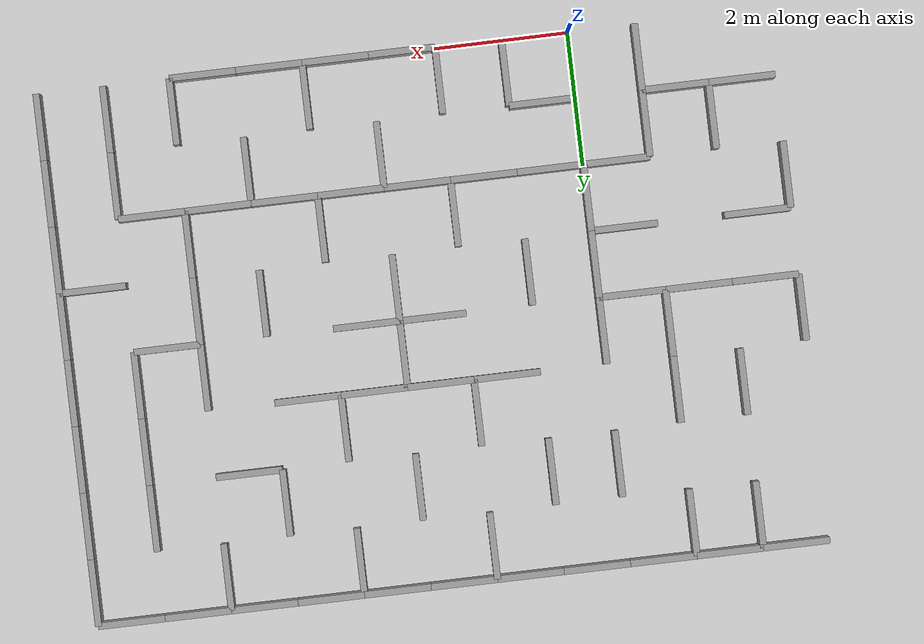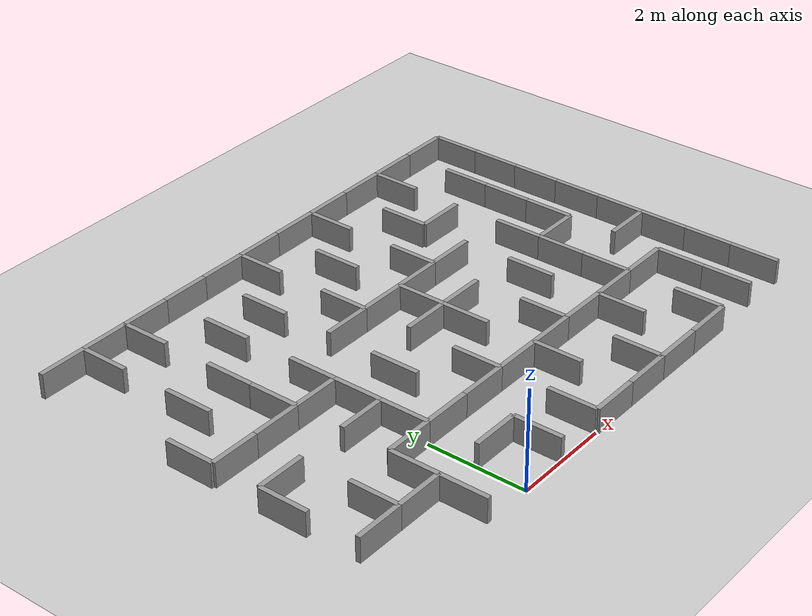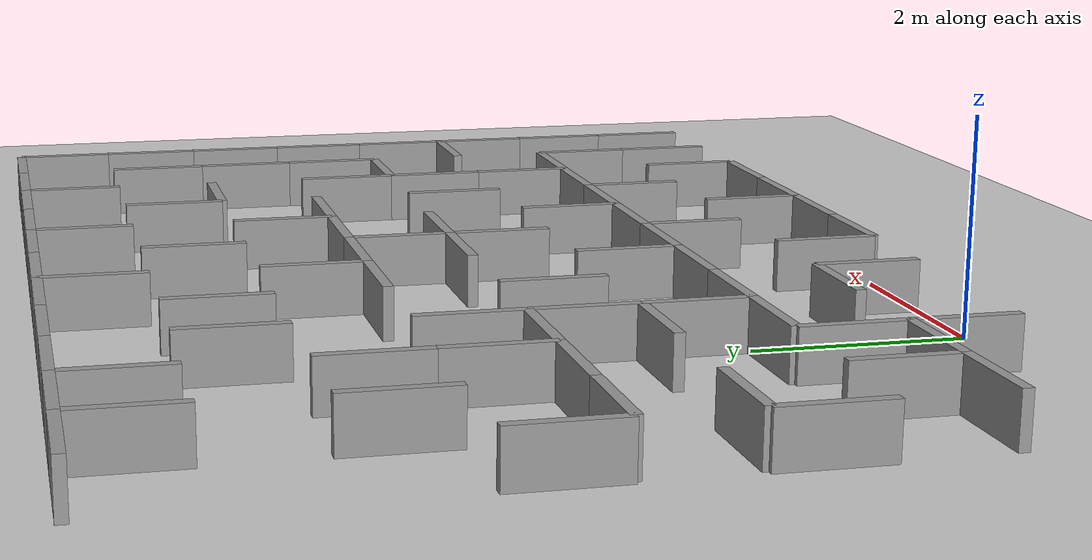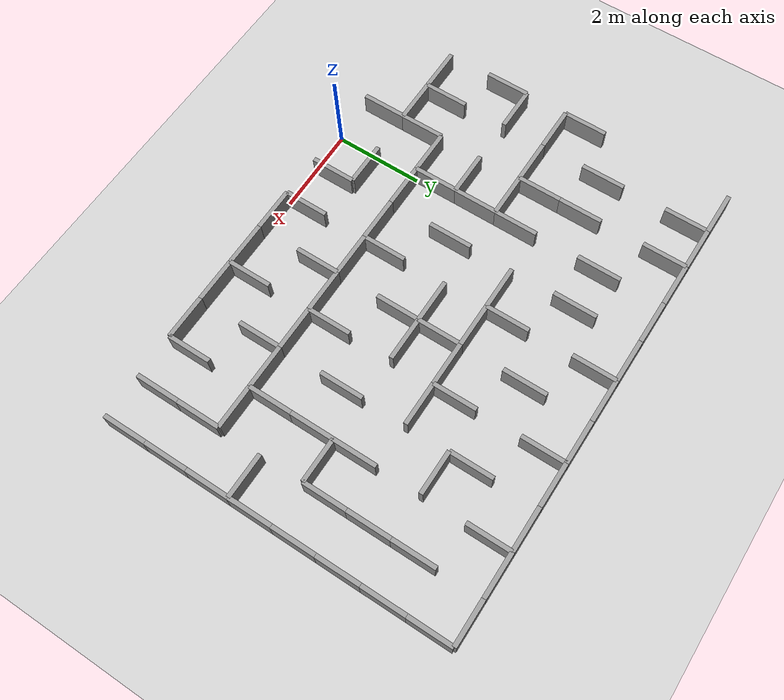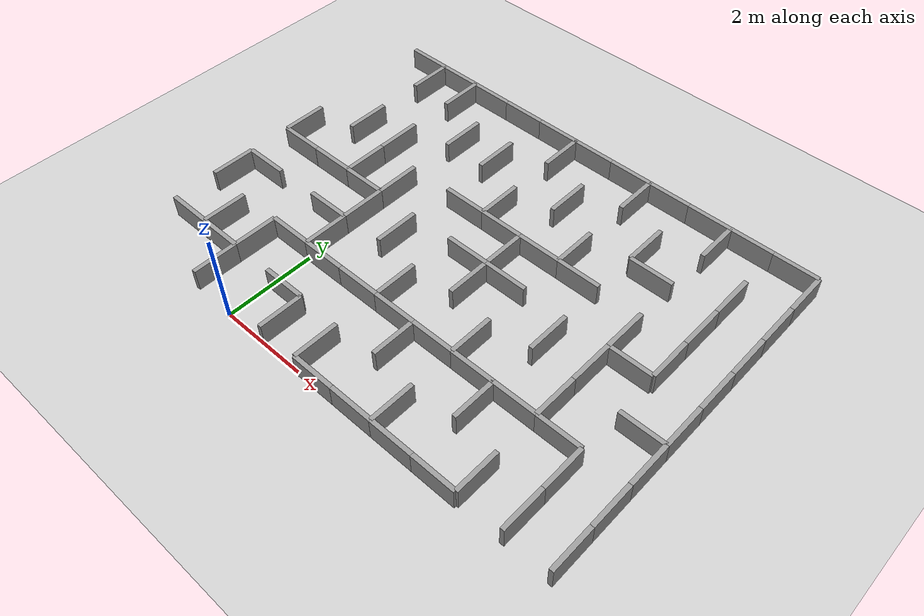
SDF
<sdf version="1.7">
 <world name="maze_world">
  <include><uri>model://sun</uri></include>
  <include><uri>model://ground_plane</uri></include>
  <model name="wall_5">
   <static>true</static>
   <pose>-2.5 8.0 0.25 0 0 0</pose>
   <link name="link">
    <collision name="collision"><geometry><box><size>1.0 0.1 0.5</size></box></geometry></collision>
    <visual name="visual">
     <geometry><box><size>1.0 0.1 0.5</size></box></geometry>
     <material>
      <script><uri>file://media/materials/scripts/gazebo.material</uri><name>Gazebo/Grey</name></script>
     </material>
    </visual>
   </link>
  </model>
  <model name="wall_6">
   <static>true</static>
   <pose>-1.5 8.0 0.25 0 0 0</pose>
   <link name="link">
    <collision name="collision"><geometry><box><size>1.0 0.1 0.5</size></box></geometry></collision>
    <visual name="visual">
     <geometry><box><size>1.0 0.1 0.5</size></box></geometry>
     <material>
      <script><uri>file://media/materials/scripts/gazebo.material</uri><name>Gazebo/Grey</name></script>
     </material>
    </visual>
   </link>
  </model>
  <model name="wall_7">
   <static>true</static>
   <pose>-0.5 8.0 0.25 0 0 0</pose>
   <link name="link">
    <collision name="collision"><geometry><box><size>1.0 0.1 0.5</size></box></geometry></collision>
    <visual name="visual">
     <geometry><box><size>1.0 0.1 0.5</size></box></geometry>
     <material>
      <script><uri>file://media/materials/scripts/gazebo.material</uri><name>Gazebo/Grey</name></script>
     </material>
    </visual>
   </link>
  </model>
  <model name="wall_8">
   <static>true</static>
   <pose>0.5 8.0 0.25 0 0 0</pose>
   <link name="link">
    <collision name="collision"><geometry><box><size>1.0 0.1 0.5</size></box></geometry></collision>
    <visual name="visual">
     <geometry><box><size>1.0 0.1 0.5</size></box></geometry>
     <material>
      <script><uri>file://media/materials/scripts/gazebo.material</uri><name>Gazebo/Grey</name></script>
     </material>
    </visual>
   </link>
  </model>
  <model name="wall_9">
   <static>true</static>
   <pose>1.5 8.0 0.25 0 0 0</pose>
   <link name="link">
    <collision name="collision"><geometry><box><size>1.0 0.1 0.5</size></box></geometry></collision>
    <visual name="visual">
     <geometry><box><size>1.0 0.1 0.5</size></box></geometry>
     <material>
      <script><uri>file://media/materials/scripts/gazebo.material</uri><name>Gazebo/Grey</name></script>
     </material>
    </visual>
   </link>
  </model>
  <model name="wall_10">
   <static>true</static>
   <pose>2.5 8.0 0.25 0 0 0</pose>
   <link name="link">
    <collision name="collision"><geometry><box><size>1.0 0.1 0.5</size></box></geometry></collision>
    <visual name="visual">
     <geometry><box><size>1.0 0.1 0.5</size></box></geometry>
     <material>
      <script><uri>file://media/materials/scripts/gazebo.material</uri><name>Gazebo/Grey</name></script>
     </material>
    </visual>
   </link>
  </model>
  <model name="wall_11">
   <static>true</static>
   <pose>3.5 8.0 0.25 0 0 0</pose>
   <link name="link">
    <collision name="collision"><geometry><box><size>1.0 0.1 0.5</size></box></geometry></collision>
    <visual name="visual">
     <geometry><box><size>1.0 0.1 0.5</size></box></geometry>
     <material>
      <script><uri>file://media/materials/scripts/gazebo.material</uri><name>Gazebo/Grey</name></script>
     </material>
    </visual>
   </link>
  </model>
  <model name="wall_12">
   <static>true</static>
   <pose>4.5 8.0 0.25 0 0 0</pose>
   <link name="link">
    <collision name="collision"><geometry><box><size>1.0 0.1 0.5</size></box></geometry></collision>
    <visual name="visual">
     <geometry><box><size>1.0 0.1 0.5</size></box></geometry>
     <material>
      <script><uri>file://media/materials/scripts/gazebo.material</uri><name>Gazebo/Grey</name></script>
     </material>
    </visual>
   </link>
  </model>
  <model name="wall_13">
   <static>true</static>
   <pose>5.5 8.0 0.25 0 0 0</pose>
   <link name="link">
    <collision name="collision"><geometry><box><size>1.0 0.1 0.5</size></box></geometry></collision>
    <visual name="visual">
     <geometry><box><size>1.0 0.1 0.5</size></box></geometry>
     <material>
      <script><uri>file://media/materials/scripts/gazebo.material</uri><name>Gazebo/Grey</name></script>
     </material>
    </visual>
   </link>
  </model>
  <model name="wall_14">
   <static>true</static>
   <pose>6.5 8.0 0.25 0 0 0</pose>
   <link name="link">
    <collision name="collision"><geometry><box><size>1.0 0.1 0.5</size></box></geometry></collision>
    <visual name="visual">
     <geometry><box><size>1.0 0.1 0.5</size></box></geometry>
     <material>
      <script><uri>file://media/materials/scripts/gazebo.material</uri><name>Gazebo/Grey</name></script>
     </material>
    </visual>
   </link>
  </model>
  <model name="wall_15">
   <static>true</static>
   <pose>7.5 8.0 0.25 0 0 0</pose>
   <link name="link">
    <collision name="collision"><geometry><box><size>1.0 0.1 0.5</size></box></geometry></collision>
    <visual name="visual">
     <geometry><box><size>1.0 0.1 0.5</size></box></geometry>
     <material>
      <script><uri>file://media/materials/scripts/gazebo.material</uri><name>Gazebo/Grey</name></script>
     </material>
    </visual>
   </link>
  </model>
  <model name="wall_22">
   <static>true</static>
   <pose>-2.0 7.5 0.25 0 0 1.5707963267948966</pose>
   <link name="link">
    <collision name="collision"><geometry><box><size>1.0 0.1 0.5</size></box></geometry></collision>
    <visual name="visual">
     <geometry><box><size>1.0 0.1 0.5</size></box></geometry>
     <material>
      <script><uri>file://media/materials/scripts/gazebo.material</uri><name>Gazebo/Grey</name></script>
     </material>
    </visual>
   </link>
  </model>
  <model name="wall_23">
   <static>true</static>
   <pose>-1.0 7.5 0.25 0 0 1.5707963267948966</pose>
   <link name="link">
    <collision name="collision"><geometry><box><size>1.0 0.1 0.5</size></box></geometry></collision>
    <visual name="visual">
     <geometry><box><size>1.0 0.1 0.5</size></box></geometry>
     <material>
      <script><uri>file://media/materials/scripts/gazebo.material</uri><name>Gazebo/Grey</name></script>
     </material>
    </visual>
   </link>
  </model>
  <model name="wall_24">
   <static>true</static>
   <pose>2.0 7.5 0.25 0 0 1.5707963267948966</pose>
   <link name="link">
    <collision name="collision"><geometry><box><size>1.0 0.1 0.5</size></box></geometry></collision>
    <visual name="visual">
     <geometry><box><size>1.0 0.1 0.5</size></box></geometry>
     <material>
      <script><uri>file://media/materials/scripts/gazebo.material</uri><name>Gazebo/Grey</name></script>
     </material>
    </visual>
   </link>
  </model>
  <model name="wall_25">
   <static>true</static>
   <pose>4.0 7.5 0.25 0 0 1.5707963267948966</pose>
   <link name="link">
    <collision name="collision"><geometry><box><size>1.0 0.1 0.5</size></box></geometry></collision>
    <visual name="visual">
     <geometry><box><size>1.0 0.1 0.5</size></box></geometry>
     <material>
      <script><uri>file://media/materials/scripts/gazebo.material</uri><name>Gazebo/Grey</name></script>
     </material>
    </visual>
   </link>
  </model>
  <model name="wall_26">
   <static>true</static>
   <pose>6.0 7.5 0.25 0 0 1.5707963267948966</pose>
   <link name="link">
    <collision name="collision"><geometry><box><size>1.0 0.1 0.5</size></box></geometry></collision>
    <visual name="visual">
     <geometry><box><size>1.0 0.1 0.5</size></box></geometry>
     <material>
      <script><uri>file://media/materials/scripts/gazebo.material</uri><name>Gazebo/Grey</name></script>
     </material>
    </visual>
   </link>
  </model>
  <model name="wall_27">
   <static>true</static>
   <pose>8.0 7.5 0.25 0 0 1.5707963267948966</pose>
   <link name="link">
    <collision name="collision"><geometry><box><size>1.0 0.1 0.5</size></box></geometry></collision>
    <visual name="visual">
     <geometry><box><size>1.0 0.1 0.5</size></box></geometry>
     <material>
      <script><uri>file://media/materials/scripts/gazebo.material</uri><name>Gazebo/Grey</name></script>
     </material>
    </visual>
   </link>
  </model>
  <model name="wall_29">
   <static>true</static>
   <pose>0.0 6.5 0.25 0 0 1.5707963267948966</pose>
   <link name="link">
    <collision name="collision"><geometry><box><size>1.0 0.1 0.5</size></box></geometry></collision>
    <visual name="visual">
     <geometry><box><size>1.0 0.1 0.5</size></box></geometry>
     <material>
      <script><uri>file://media/materials/scripts/gazebo.material</uri><name>Gazebo/Grey</name></script>
     </material>
    </visual>
   </link>
  </model>
  <model name="wall_30">
   <static>true</static>
   <pose>1.0 6.5 0.25 0 0 1.5707963267948966</pose>
   <link name="link">
    <collision name="collision"><geometry><box><size>1.0 0.1 0.5</size></box></geometry></collision>
    <visual name="visual">
     <geometry><box><size>1.0 0.1 0.5</size></box></geometry>
     <material>
      <script><uri>file://media/materials/scripts/gazebo.material</uri><name>Gazebo/Grey</name></script>
     </material>
    </visual>
   </link>
  </model>
  <model name="wall_31">
   <static>true</static>
   <pose>3.0 6.5 0.25 0 0 1.5707963267948966</pose>
   <link name="link">
    <collision name="collision"><geometry><box><size>1.0 0.1 0.5</size></box></geometry></collision>
    <visual name="visual">
     <geometry><box><size>1.0 0.1 0.5</size></box></geometry>
     <material>
      <script><uri>file://media/materials/scripts/gazebo.material</uri><name>Gazebo/Grey</name></script>
     </material>
    </visual>
   </link>
  </model>
  <model name="wall_32">
   <static>true</static>
   <pose>5.0 6.5 0.25 0 0 1.5707963267948966</pose>
   <link name="link">
    <collision name="collision"><geometry><box><size>1.0 0.1 0.5</size></box></geometry></collision>
    <visual name="visual">
     <geometry><box><size>1.0 0.1 0.5</size></box></geometry>
     <material>
      <script><uri>file://media/materials/scripts/gazebo.material</uri><name>Gazebo/Grey</name></script>
     </material>
    </visual>
   </link>
  </model>
  <model name="wall_33">
   <static>true</static>
   <pose>7.0 6.5 0.25 0 0 1.5707963267948966</pose>
   <link name="link">
    <collision name="collision"><geometry><box><size>1.0 0.1 0.5</size></box></geometry></collision>
    <visual name="visual">
     <geometry><box><size>1.0 0.1 0.5</size></box></geometry>
     <material>
      <script><uri>file://media/materials/scripts/gazebo.material</uri><name>Gazebo/Grey</name></script>
     </material>
    </visual>
   </link>
  </model>
  <model name="wall_34">
   <static>true</static>
   <pose>8.0 6.5 0.25 0 0 1.5707963267948966</pose>
   <link name="link">
    <collision name="collision"><geometry><box><size>1.0 0.1 0.5</size></box></geometry></collision>
    <visual name="visual">
     <geometry><box><size>1.0 0.1 0.5</size></box></geometry>
     <material>
      <script><uri>file://media/materials/scripts/gazebo.material</uri><name>Gazebo/Grey</name></script>
     </material>
    </visual>
   </link>
  </model>
  <model name="wall_35">
   <static>true</static>
   <pose>5.5 6.0 0.25 0 0 0</pose>
   <link name="link">
    <collision name="collision"><geometry><box><size>1.0 0.1 0.5</size></box></geometry></collision>
    <visual name="visual">
     <geometry><box><size>1.0 0.1 0.5</size></box></geometry>
     <material>
      <script><uri>file://media/materials/scripts/gazebo.material</uri><name>Gazebo/Grey</name></script>
     </material>
    </visual>
   </link>
  </model>
  <model name="wall_42">
   <static>true</static>
   <pose>-2.0 5.5 0.25 0 0 1.5707963267948966</pose>
   <link name="link">
    <collision name="collision"><geometry><box><size>1.0 0.1 0.5</size></box></geometry></collision>
    <visual name="visual">
     <geometry><box><size>1.0 0.1 0.5</size></box></geometry>
     <material>
      <script><uri>file://media/materials/scripts/gazebo.material</uri><name>Gazebo/Grey</name></script>
     </material>
    </visual>
   </link>
  </model>
  <model name="wall_43">
   <static>true</static>
   <pose>-1.0 5.5 0.25 0 0 1.5707963267948966</pose>
   <link name="link">
    <collision name="collision"><geometry><box><size>1.0 0.1 0.5</size></box></geometry></collision>
    <visual name="visual">
     <geometry><box><size>1.0 0.1 0.5</size></box></geometry>
     <material>
      <script><uri>file://media/materials/scripts/gazebo.material</uri><name>Gazebo/Grey</name></script>
     </material>
    </visual>
   </link>
  </model>
  <model name="wall_44">
   <static>true</static>
   <pose>2.0 5.5 0.25 0 0 1.5707963267948966</pose>
   <link name="link">
    <collision name="collision"><geometry><box><size>1.0 0.1 0.5</size></box></geometry></collision>
    <visual name="visual">
     <geometry><box><size>1.0 0.1 0.5</size></box></geometry>
     <material>
      <script><uri>file://media/materials/scripts/gazebo.material</uri><name>Gazebo/Grey</name></script>
     </material>
    </visual>
   </link>
  </model>
  <model name="wall_45">
   <static>true</static>
   <pose>4.0 5.5 0.25 0 0 1.5707963267948966</pose>
   <link name="link">
    <collision name="collision"><geometry><box><size>1.0 0.1 0.5</size></box></geometry></collision>
    <visual name="visual">
     <geometry><box><size>1.0 0.1 0.5</size></box></geometry>
     <material>
      <script><uri>file://media/materials/scripts/gazebo.material</uri><name>Gazebo/Grey</name></script>
     </material>
    </visual>
   </link>
  </model>
  <model name="wall_46">
   <static>true</static>
   <pose>7.0 5.5 0.25 0 0 1.5707963267948966</pose>
   <link name="link">
    <collision name="collision"><geometry><box><size>1.0 0.1 0.5</size></box></geometry></collision>
    <visual name="visual">
     <geometry><box><size>1.0 0.1 0.5</size></box></geometry>
     <material>
      <script><uri>file://media/materials/scripts/gazebo.material</uri><name>Gazebo/Grey</name></script>
     </material>
    </visual>
   </link>
  </model>
  <model name="wall_47">
   <static>true</static>
   <pose>8.0 5.5 0.25 0 0 1.5707963267948966</pose>
   <link name="link">
    <collision name="collision"><geometry><box><size>1.0 0.1 0.5</size></box></geometry></collision>
    <visual name="visual">
     <geometry><box><size>1.0 0.1 0.5</size></box></geometry>
     <material>
      <script><uri>file://media/materials/scripts/gazebo.material</uri><name>Gazebo/Grey</name></script>
     </material>
    </visual>
   </link>
  </model>
  <model name="wall_50">
   <static>true</static>
   <pose>1.5 5.0 0.25 0 0 0</pose>
   <link name="link">
    <collision name="collision"><geometry><box><size>1.0 0.1 0.5</size></box></geometry></collision>
    <visual name="visual">
     <geometry><box><size>1.0 0.1 0.5</size></box></geometry>
     <material>
      <script><uri>file://media/materials/scripts/gazebo.material</uri><name>Gazebo/Grey</name></script>
     </material>
    </visual>
   </link>
  </model>
  <model name="wall_51">
   <static>true</static>
   <pose>2.5 5.0 0.25 0 0 0</pose>
   <link name="link">
    <collision name="collision"><geometry><box><size>1.0 0.1 0.5</size></box></geometry></collision>
    <visual name="visual">
     <geometry><box><size>1.0 0.1 0.5</size></box></geometry>
     <material>
      <script><uri>file://media/materials/scripts/gazebo.material</uri><name>Gazebo/Grey</name></script>
     </material>
    </visual>
   </link>
  </model>
  <model name="wall_52">
   <static>true</static>
   <pose>3.5 5.0 0.25 0 0 0</pose>
   <link name="link">
    <collision name="collision"><geometry><box><size>1.0 0.1 0.5</size></box></geometry></collision>
    <visual name="visual">
     <geometry><box><size>1.0 0.1 0.5</size></box></geometry>
     <material>
      <script><uri>file://media/materials/scripts/gazebo.material</uri><name>Gazebo/Grey</name></script>
     </material>
    </visual>
   </link>
  </model>
  <model name="wall_53">
   <static>true</static>
   <pose>4.5 5.0 0.25 0 0 0</pose>
   <link name="link">
    <collision name="collision"><geometry><box><size>1.0 0.1 0.5</size></box></geometry></collision>
    <visual name="visual">
     <geometry><box><size>1.0 0.1 0.5</size></box></geometry>
     <material>
      <script><uri>file://media/materials/scripts/gazebo.material</uri><name>Gazebo/Grey</name></script>
     </material>
    </visual>
   </link>
  </model>
  <model name="wall_57">
   <static>true</static>
   <pose>-3.0 4.5 0.25 0 0 1.5707963267948966</pose>
   <link name="link">
    <collision name="collision"><geometry><box><size>1.0 0.1 0.5</size></box></geometry></collision>
    <visual name="visual">
     <geometry><box><size>1.0 0.1 0.5</size></box></geometry>
     <material>
      <script><uri>file://media/materials/scripts/gazebo.material</uri><name>Gazebo/Grey</name></script>
     </material>
    </visual>
   </link>
  </model>
  <model name="wall_58">
   <static>true</static>
   <pose>-1.0 4.5 0.25 0 0 1.5707963267948966</pose>
   <link name="link">
    <collision name="collision"><geometry><box><size>1.0 0.1 0.5</size></box></geometry></collision>
    <visual name="visual">
     <geometry><box><size>1.0 0.1 0.5</size></box></geometry>
     <material>
      <script><uri>file://media/materials/scripts/gazebo.material</uri><name>Gazebo/Grey</name></script>
     </material>
    </visual>
   </link>
  </model>
  <model name="wall_59">
   <static>true</static>
   <pose>0.0 4.5 0.25 0 0 1.5707963267948966</pose>
   <link name="link">
    <collision name="collision"><geometry><box><size>1.0 0.1 0.5</size></box></geometry></collision>
    <visual name="visual">
     <geometry><box><size>1.0 0.1 0.5</size></box></geometry>
     <material>
      <script><uri>file://media/materials/scripts/gazebo.material</uri><name>Gazebo/Grey</name></script>
     </material>
    </visual>
   </link>
  </model>
  <model name="wall_60">
   <static>true</static>
   <pose>3.0 4.5 0.25 0 0 1.5707963267948966</pose>
   <link name="link">
    <collision name="collision"><geometry><box><size>1.0 0.1 0.5</size></box></geometry></collision>
    <visual name="visual">
     <geometry><box><size>1.0 0.1 0.5</size></box></geometry>
     <material>
      <script><uri>file://media/materials/scripts/gazebo.material</uri><name>Gazebo/Grey</name></script>
     </material>
    </visual>
   </link>
  </model>
  <model name="wall_61">
   <static>true</static>
   <pose>6.0 4.5 0.25 0 0 1.5707963267948966</pose>
   <link name="link">
    <collision name="collision"><geometry><box><size>1.0 0.1 0.5</size></box></geometry></collision>
    <visual name="visual">
     <geometry><box><size>1.0 0.1 0.5</size></box></geometry>
     <material>
      <script><uri>file://media/materials/scripts/gazebo.material</uri><name>Gazebo/Grey</name></script>
     </material>
    </visual>
   </link>
  </model>
  <model name="wall_62">
   <static>true</static>
   <pose>7.0 4.5 0.25 0 0 1.5707963267948966</pose>
   <link name="link">
    <collision name="collision"><geometry><box><size>1.0 0.1 0.5</size></box></geometry></collision>
    <visual name="visual">
     <geometry><box><size>1.0 0.1 0.5</size></box></geometry>
     <material>
      <script><uri>file://media/materials/scripts/gazebo.material</uri><name>Gazebo/Grey</name></script>
     </material>
    </visual>
   </link>
  </model>
  <model name="wall_63">
   <static>true</static>
   <pose>8.0 4.5 0.25 0 0 1.5707963267948966</pose>
   <link name="link">
    <collision name="collision"><geometry><box><size>1.0 0.1 0.5</size></box></geometry></collision>
    <visual name="visual">
     <geometry><box><size>1.0 0.1 0.5</size></box></geometry>
     <material>
      <script><uri>file://media/materials/scripts/gazebo.material</uri><name>Gazebo/Grey</name></script>
     </material>
    </visual>
   </link>
  </model>
  <model name="wall_66">
   <static>true</static>
   <pose>-2.5 4.0 0.25 0 0 0</pose>
   <link name="link">
    <collision name="collision"><geometry><box><size>1.0 0.1 0.5</size></box></geometry></collision>
    <visual name="visual">
     <geometry><box><size>1.0 0.1 0.5</size></box></geometry>
     <material>
      <script><uri>file://media/materials/scripts/gazebo.material</uri><name>Gazebo/Grey</name></script>
     </material>
    </visual>
   </link>
  </model>
  <model name="wall_67">
   <static>true</static>
   <pose>-1.5 4.0 0.25 0 0 0</pose>
   <link name="link">
    <collision name="collision"><geometry><box><size>1.0 0.1 0.5</size></box></geometry></collision>
    <visual name="visual">
     <geometry><box><size>1.0 0.1 0.5</size></box></geometry>
     <material>
      <script><uri>file://media/materials/scripts/gazebo.material</uri><name>Gazebo/Grey</name></script>
     </material>
    </visual>
   </link>
  </model>
  <model name="wall_68">
   <static>true</static>
   <pose>-0.5 4.0 0.25 0 0 0</pose>
   <link name="link">
    <collision name="collision"><geometry><box><size>1.0 0.1 0.5</size></box></geometry></collision>
    <visual name="visual">
     <geometry><box><size>1.0 0.1 0.5</size></box></geometry>
     <material>
      <script><uri>file://media/materials/scripts/gazebo.material</uri><name>Gazebo/Grey</name></script>
     </material>
    </visual>
   </link>
  </model>
  <model name="wall_69">
   <static>true</static>
   <pose>2.5 4.0 0.25 0 0 0</pose>
   <link name="link">
    <collision name="collision"><geometry><box><size>1.0 0.1 0.5</size></box></geometry></collision>
    <visual name="visual">
     <geometry><box><size>1.0 0.1 0.5</size></box></geometry>
     <material>
      <script><uri>file://media/materials/scripts/gazebo.material</uri><name>Gazebo/Grey</name></script>
     </material>
    </visual>
   </link>
  </model>
  <model name="wall_70">
   <static>true</static>
   <pose>3.5 4.0 0.25 0 0 0</pose>
   <link name="link">
    <collision name="collision"><geometry><box><size>1.0 0.1 0.5</size></box></geometry></collision>
    <visual name="visual">
     <geometry><box><size>1.0 0.1 0.5</size></box></geometry>
     <material>
      <script><uri>file://media/materials/scripts/gazebo.material</uri><name>Gazebo/Grey</name></script>
     </material>
    </visual>
   </link>
  </model>
  <model name="wall_71">
   <static>true</static>
   <pose>6.5 4.0 0.25 0 0 0</pose>
   <link name="link">
    <collision name="collision"><geometry><box><size>1.0 0.1 0.5</size></box></geometry></collision>
    <visual name="visual">
     <geometry><box><size>1.0 0.1 0.5</size></box></geometry>
     <material>
      <script><uri>file://media/materials/scripts/gazebo.material</uri><name>Gazebo/Grey</name></script>
     </material>
    </visual>
   </link>
  </model>
  <model name="wall_76">
   <static>true</static>
   <pose>0.0 3.5 0.25 0 0 1.5707963267948966</pose>
   <link name="link">
    <collision name="collision"><geometry><box><size>1.0 0.1 0.5</size></box></geometry></collision>
    <visual name="visual">
     <geometry><box><size>1.0 0.1 0.5</size></box></geometry>
     <material>
      <script><uri>file://media/materials/scripts/gazebo.material</uri><name>Gazebo/Grey</name></script>
     </material>
    </visual>
   </link>
  </model>
  <model name="wall_77">
   <static>true</static>
   <pose>1.0 3.5 0.25 0 0 1.5707963267948966</pose>
   <link name="link">
    <collision name="collision"><geometry><box><size>1.0 0.1 0.5</size></box></geometry></collision>
    <visual name="visual">
     <geometry><box><size>1.0 0.1 0.5</size></box></geometry>
     <material>
      <script><uri>file://media/materials/scripts/gazebo.material</uri><name>Gazebo/Grey</name></script>
     </material>
    </visual>
   </link>
  </model>
  <model name="wall_78">
   <static>true</static>
   <pose>3.0 3.5 0.25 0 0 1.5707963267948966</pose>
   <link name="link">
    <collision name="collision"><geometry><box><size>1.0 0.1 0.5</size></box></geometry></collision>
    <visual name="visual">
     <geometry><box><size>1.0 0.1 0.5</size></box></geometry>
     <material>
      <script><uri>file://media/materials/scripts/gazebo.material</uri><name>Gazebo/Grey</name></script>
     </material>
    </visual>
   </link>
  </model>
  <model name="wall_79">
   <static>true</static>
   <pose>5.0 3.5 0.25 0 0 1.5707963267948966</pose>
   <link name="link">
    <collision name="collision"><geometry><box><size>1.0 0.1 0.5</size></box></geometry></collision>
    <visual name="visual">
     <geometry><box><size>1.0 0.1 0.5</size></box></geometry>
     <material>
      <script><uri>file://media/materials/scripts/gazebo.material</uri><name>Gazebo/Grey</name></script>
     </material>
    </visual>
   </link>
  </model>
  <model name="wall_80">
   <static>true</static>
   <pose>6.0 3.5 0.25 0 0 1.5707963267948966</pose>
   <link name="link">
    <collision name="collision"><geometry><box><size>1.0 0.1 0.5</size></box></geometry></collision>
    <visual name="visual">
     <geometry><box><size>1.0 0.1 0.5</size></box></geometry>
     <material>
      <script><uri>file://media/materials/scripts/gazebo.material</uri><name>Gazebo/Grey</name></script>
     </material>
    </visual>
   </link>
  </model>
  <model name="wall_81">
   <static>true</static>
   <pose>8.0 3.5 0.25 0 0 1.5707963267948966</pose>
   <link name="link">
    <collision name="collision"><geometry><box><size>1.0 0.1 0.5</size></box></geometry></collision>
    <visual name="visual">
     <geometry><box><size>1.0 0.1 0.5</size></box></geometry>
     <material>
      <script><uri>file://media/materials/scripts/gazebo.material</uri><name>Gazebo/Grey</name></script>
     </material>
    </visual>
   </link>
  </model>
  <model name="wall_83">
   <static>true</static>
   <pose>-2.5 3.0 0.25 0 0 0</pose>
   <link name="link">
    <collision name="collision"><geometry><box><size>1.0 0.1 0.5</size></box></geometry></collision>
    <visual name="visual">
     <geometry><box><size>1.0 0.1 0.5</size></box></geometry>
     <material>
      <script><uri>file://media/materials/scripts/gazebo.material</uri><name>Gazebo/Grey</name></script>
     </material>
    </visual>
   </link>
  </model>
  <model name="wall_84">
   <static>true</static>
   <pose>-0.5 3.0 0.25 0 0 0</pose>
   <link name="link">
    <collision name="collision"><geometry><box><size>1.0 0.1 0.5</size></box></geometry></collision>
    <visual name="visual">
     <geometry><box><size>1.0 0.1 0.5</size></box></geometry>
     <material>
      <script><uri>file://media/materials/scripts/gazebo.material</uri><name>Gazebo/Grey</name></script>
     </material>
    </visual>
   </link>
  </model>
  <model name="wall_85">
   <static>true</static>
   <pose>7.5 3.0 0.25 0 0 0</pose>
   <link name="link">
    <collision name="collision"><geometry><box><size>1.0 0.1 0.5</size></box></geometry></collision>
    <visual name="visual">
     <geometry><box><size>1.0 0.1 0.5</size></box></geometry>
     <material>
      <script><uri>file://media/materials/scripts/gazebo.material</uri><name>Gazebo/Grey</name></script>
     </material>
    </visual>
   </link>
  </model>
  <model name="wall_89">
   <static>true</static>
   <pose>-3.0 2.5 0.25 0 0 1.5707963267948966</pose>
   <link name="link">
    <collision name="collision"><geometry><box><size>1.0 0.1 0.5</size></box></geometry></collision>
    <visual name="visual">
     <geometry><box><size>1.0 0.1 0.5</size></box></geometry>
     <material>
      <script><uri>file://media/materials/scripts/gazebo.material</uri><name>Gazebo/Grey</name></script>
     </material>
    </visual>
   </link>
  </model>
  <model name="wall_90">
   <static>true</static>
   <pose>0.0 2.5 0.25 0 0 1.5707963267948966</pose>
   <link name="link">
    <collision name="collision"><geometry><box><size>1.0 0.1 0.5</size></box></geometry></collision>
    <visual name="visual">
     <geometry><box><size>1.0 0.1 0.5</size></box></geometry>
     <material>
      <script><uri>file://media/materials/scripts/gazebo.material</uri><name>Gazebo/Grey</name></script>
     </material>
    </visual>
   </link>
  </model>
  <model name="wall_91">
   <static>true</static>
   <pose>2.0 2.5 0.25 0 0 1.5707963267948966</pose>
   <link name="link">
    <collision name="collision"><geometry><box><size>1.0 0.1 0.5</size></box></geometry></collision>
    <visual name="visual">
     <geometry><box><size>1.0 0.1 0.5</size></box></geometry>
     <material>
      <script><uri>file://media/materials/scripts/gazebo.material</uri><name>Gazebo/Grey</name></script>
     </material>
    </visual>
   </link>
  </model>
  <model name="wall_92">
   <static>true</static>
   <pose>4.0 2.5 0.25 0 0 1.5707963267948966</pose>
   <link name="link">
    <collision name="collision"><geometry><box><size>1.0 0.1 0.5</size></box></geometry></collision>
    <visual name="visual">
     <geometry><box><size>1.0 0.1 0.5</size></box></geometry>
     <material>
      <script><uri>file://media/materials/scripts/gazebo.material</uri><name>Gazebo/Grey</name></script>
     </material>
    </visual>
   </link>
  </model>
  <model name="wall_93">
   <static>true</static>
   <pose>6.0 2.5 0.25 0 0 1.5707963267948966</pose>
   <link name="link">
    <collision name="collision"><geometry><box><size>1.0 0.1 0.5</size></box></geometry></collision>
    <visual name="visual">
     <geometry><box><size>1.0 0.1 0.5</size></box></geometry>
     <material>
      <script><uri>file://media/materials/scripts/gazebo.material</uri><name>Gazebo/Grey</name></script>
     </material>
    </visual>
   </link>
  </model>
  <model name="wall_94">
   <static>true</static>
   <pose>8.0 2.5 0.25 0 0 1.5707963267948966</pose>
   <link name="link">
    <collision name="collision"><geometry><box><size>1.0 0.1 0.5</size></box></geometry></collision>
    <visual name="visual">
     <geometry><box><size>1.0 0.1 0.5</size></box></geometry>
     <material>
      <script><uri>file://media/materials/scripts/gazebo.material</uri><name>Gazebo/Grey</name></script>
     </material>
    </visual>
   </link>
  </model>
  <model name="wall_96">
   <static>true</static>
   <pose>-0.5 2.0 0.25 0 0 0</pose>
   <link name="link">
    <collision name="collision"><geometry><box><size>1.0 0.1 0.5</size></box></geometry></collision>
    <visual name="visual">
     <geometry><box><size>1.0 0.1 0.5</size></box></geometry>
     <material>
      <script><uri>file://media/materials/scripts/gazebo.material</uri><name>Gazebo/Grey</name></script>
     </material>
    </visual>
   </link>
  </model>
  <model name="wall_97">
   <static>true</static>
   <pose>0.5 2.0 0.25 0 0 0</pose>
   <link name="link">
    <collision name="collision"><geometry><box><size>1.0 0.1 0.5</size></box></geometry></collision>
    <visual name="visual">
     <geometry><box><size>1.0 0.1 0.5</size></box></geometry>
     <material>
      <script><uri>file://media/materials/scripts/gazebo.material</uri><name>Gazebo/Grey</name></script>
     </material>
    </visual>
   </link>
  </model>
  <model name="wall_98">
   <static>true</static>
   <pose>1.5 2.0 0.25 0 0 0</pose>
   <link name="link">
    <collision name="collision"><geometry><box><size>1.0 0.1 0.5</size></box></geometry></collision>
    <visual name="visual">
     <geometry><box><size>1.0 0.1 0.5</size></box></geometry>
     <material>
      <script><uri>file://media/materials/scripts/gazebo.material</uri><name>Gazebo/Grey</name></script>
     </material>
    </visual>
   </link>
  </model>
  <model name="wall_99">
   <static>true</static>
   <pose>2.5 2.0 0.25 0 0 0</pose>
   <link name="link">
    <collision name="collision"><geometry><box><size>1.0 0.1 0.5</size></box></geometry></collision>
    <visual name="visual">
     <geometry><box><size>1.0 0.1 0.5</size></box></geometry>
     <material>
      <script><uri>file://media/materials/scripts/gazebo.material</uri><name>Gazebo/Grey</name></script>
     </material>
    </visual>
   </link>
  </model>
  <model name="wall_100">
   <static>true</static>
   <pose>3.5 2.0 0.25 0 0 0</pose>
   <link name="link">
    <collision name="collision"><geometry><box><size>1.0 0.1 0.5</size></box></geometry></collision>
    <visual name="visual">
     <geometry><box><size>1.0 0.1 0.5</size></box></geometry>
     <material>
      <script><uri>file://media/materials/scripts/gazebo.material</uri><name>Gazebo/Grey</name></script>
     </material>
    </visual>
   </link>
  </model>
  <model name="wall_101">
   <static>true</static>
   <pose>4.5 2.0 0.25 0 0 0</pose>
   <link name="link">
    <collision name="collision"><geometry><box><size>1.0 0.1 0.5</size></box></geometry></collision>
    <visual name="visual">
     <geometry><box><size>1.0 0.1 0.5</size></box></geometry>
     <material>
      <script><uri>file://media/materials/scripts/gazebo.material</uri><name>Gazebo/Grey</name></script>
     </material>
    </visual>
   </link>
  </model>
  <model name="wall_102">
   <static>true</static>
   <pose>5.5 2.0 0.25 0 0 0</pose>
   <link name="link">
    <collision name="collision"><geometry><box><size>1.0 0.1 0.5</size></box></geometry></collision>
    <visual name="visual">
     <geometry><box><size>1.0 0.1 0.5</size></box></geometry>
     <material>
      <script><uri>file://media/materials/scripts/gazebo.material</uri><name>Gazebo/Grey</name></script>
     </material>
    </visual>
   </link>
  </model>
  <model name="wall_103">
   <static>true</static>
   <pose>6.5 2.0 0.25 0 0 0</pose>
   <link name="link">
    <collision name="collision"><geometry><box><size>1.0 0.1 0.5</size></box></geometry></collision>
    <visual name="visual">
     <geometry><box><size>1.0 0.1 0.5</size></box></geometry>
     <material>
      <script><uri>file://media/materials/scripts/gazebo.material</uri><name>Gazebo/Grey</name></script>
     </material>
    </visual>
   </link>
  </model>
  <model name="wall_109">
   <static>true</static>
   <pose>-2.0 1.5 0.25 0 0 1.5707963267948966</pose>
   <link name="link">
    <collision name="collision"><geometry><box><size>1.0 0.1 0.5</size></box></geometry></collision>
    <visual name="visual">
     <geometry><box><size>1.0 0.1 0.5</size></box></geometry>
     <material>
      <script><uri>file://media/materials/scripts/gazebo.material</uri><name>Gazebo/Grey</name></script>
     </material>
    </visual>
   </link>
  </model>
  <model name="wall_110">
   <static>true</static>
   <pose>-1.0 1.5 0.25 0 0 1.5707963267948966</pose>
   <link name="link">
    <collision name="collision"><geometry><box><size>1.0 0.1 0.5</size></box></geometry></collision>
    <visual name="visual">
     <geometry><box><size>1.0 0.1 0.5</size></box></geometry>
     <material>
      <script><uri>file://media/materials/scripts/gazebo.material</uri><name>Gazebo/Grey</name></script>
     </material>
    </visual>
   </link>
  </model>
  <model name="wall_111">
   <static>true</static>
   <pose>3.0 1.5 0.25 0 0 1.5707963267948966</pose>
   <link name="link">
    <collision name="collision"><geometry><box><size>1.0 0.1 0.5</size></box></geometry></collision>
    <visual name="visual">
     <geometry><box><size>1.0 0.1 0.5</size></box></geometry>
     <material>
      <script><uri>file://media/materials/scripts/gazebo.material</uri><name>Gazebo/Grey</name></script>
     </material>
    </visual>
   </link>
  </model>
  <model name="wall_112">
   <static>true</static>
   <pose>5.0 1.5 0.25 0 0 1.5707963267948966</pose>
   <link name="link">
    <collision name="collision"><geometry><box><size>1.0 0.1 0.5</size></box></geometry></collision>
    <visual name="visual">
     <geometry><box><size>1.0 0.1 0.5</size></box></geometry>
     <material>
      <script><uri>file://media/materials/scripts/gazebo.material</uri><name>Gazebo/Grey</name></script>
     </material>
    </visual>
   </link>
  </model>
  <model name="wall_113">
   <static>true</static>
   <pose>7.0 1.5 0.25 0 0 1.5707963267948966</pose>
   <link name="link">
    <collision name="collision"><geometry><box><size>1.0 0.1 0.5</size></box></geometry></collision>
    <visual name="visual">
     <geometry><box><size>1.0 0.1 0.5</size></box></geometry>
     <material>
      <script><uri>file://media/materials/scripts/gazebo.material</uri><name>Gazebo/Grey</name></script>
     </material>
    </visual>
   </link>
  </model>
  <model name="wall_114">
   <static>true</static>
   <pose>8.0 1.5 0.25 0 0 1.5707963267948966</pose>
   <link name="link">
    <collision name="collision"><geometry><box><size>1.0 0.1 0.5</size></box></geometry></collision>
    <visual name="visual">
     <geometry><box><size>1.0 0.1 0.5</size></box></geometry>
     <material>
      <script><uri>file://media/materials/scripts/gazebo.material</uri><name>Gazebo/Grey</name></script>
     </material>
    </visual>
   </link>
  </model>
  <model name="wall_115">
   <static>true</static>
   <pose>-2.5 1.0 0.25 0 0 0</pose>
   <link name="link">
    <collision name="collision"><geometry><box><size>1.0 0.1 0.5</size></box></geometry></collision>
    <visual name="visual">
     <geometry><box><size>1.0 0.1 0.5</size></box></geometry>
     <material>
      <script><uri>file://media/materials/scripts/gazebo.material</uri><name>Gazebo/Grey</name></script>
     </material>
    </visual>
   </link>
  </model>
  <model name="wall_116">
   <static>true</static>
   <pose>-1.5 1.0 0.25 0 0 0</pose>
   <link name="link">
    <collision name="collision"><geometry><box><size>1.0 0.1 0.5</size></box></geometry></collision>
    <visual name="visual">
     <geometry><box><size>1.0 0.1 0.5</size></box></geometry>
     <material>
      <script><uri>file://media/materials/scripts/gazebo.material</uri><name>Gazebo/Grey</name></script>
     </material>
    </visual>
   </link>
  </model>
  <model name="wall_117">
   <static>true</static>
   <pose>0.5 1.0 0.25 0 0 0</pose>
   <link name="link">
    <collision name="collision"><geometry><box><size>1.0 0.1 0.5</size></box></geometry></collision>
    <visual name="visual">
     <geometry><box><size>1.0 0.1 0.5</size></box></geometry>
     <material>
      <script><uri>file://media/materials/scripts/gazebo.material</uri><name>Gazebo/Grey</name></script>
     </material>
    </visual>
   </link>
  </model>
  <model name="wall_122">
   <static>true</static>
   <pose>-1.0 0.5 0.25 0 0 1.5707963267948966</pose>
   <link name="link">
    <collision name="collision"><geometry><box><size>1.0 0.1 0.5</size></box></geometry></collision>
    <visual name="visual">
     <geometry><box><size>1.0 0.1 0.5</size></box></geometry>
     <material>
      <script><uri>file://media/materials/scripts/gazebo.material</uri><name>Gazebo/Grey</name></script>
     </material>
    </visual>
   </link>
  </model>
  <model name="wall_123">
   <static>true</static>
   <pose>1.0 0.5 0.25 0 0 1.5707963267948966</pose>
   <link name="link">
    <collision name="collision"><geometry><box><size>1.0 0.1 0.5</size></box></geometry></collision>
    <visual name="visual">
     <geometry><box><size>1.0 0.1 0.5</size></box></geometry>
     <material>
      <script><uri>file://media/materials/scripts/gazebo.material</uri><name>Gazebo/Grey</name></script>
     </material>
    </visual>
   </link>
  </model>
  <model name="wall_124">
   <static>true</static>
   <pose>2.0 0.5 0.25 0 0 1.5707963267948966</pose>
   <link name="link">
    <collision name="collision"><geometry><box><size>1.0 0.1 0.5</size></box></geometry></collision>
    <visual name="visual">
     <geometry><box><size>1.0 0.1 0.5</size></box></geometry>
     <material>
      <script><uri>file://media/materials/scripts/gazebo.material</uri><name>Gazebo/Grey</name></script>
     </material>
    </visual>
   </link>
  </model>
  <model name="wall_125">
   <static>true</static>
   <pose>4.0 0.5 0.25 0 0 1.5707963267948966</pose>
   <link name="link">
    <collision name="collision"><geometry><box><size>1.0 0.1 0.5</size></box></geometry></collision>
    <visual name="visual">
     <geometry><box><size>1.0 0.1 0.5</size></box></geometry>
     <material>
      <script><uri>file://media/materials/scripts/gazebo.material</uri><name>Gazebo/Grey</name></script>
     </material>
    </visual>
   </link>
  </model>
  <model name="wall_126">
   <static>true</static>
   <pose>6.0 0.5 0.25 0 0 1.5707963267948966</pose>
   <link name="link">
    <collision name="collision"><geometry><box><size>1.0 0.1 0.5</size></box></geometry></collision>
    <visual name="visual">
     <geometry><box><size>1.0 0.1 0.5</size></box></geometry>
     <material>
      <script><uri>file://media/materials/scripts/gazebo.material</uri><name>Gazebo/Grey</name></script>
     </material>
    </visual>
   </link>
  </model>
  <model name="wall_127">
   <static>true</static>
   <pose>7.0 0.5 0.25 0 0 1.5707963267948966</pose>
   <link name="link">
    <collision name="collision"><geometry><box><size>1.0 0.1 0.5</size></box></geometry></collision>
    <visual name="visual">
     <geometry><box><size>1.0 0.1 0.5</size></box></geometry>
     <material>
      <script><uri>file://media/materials/scripts/gazebo.material</uri><name>Gazebo/Grey</name></script>
     </material>
    </visual>
   </link>
  </model>
  <model name="wall_128">
   <static>true</static>
   <pose>8.0 0.5 0.25 0 0 1.5707963267948966</pose>
   <link name="link">
    <collision name="collision"><geometry><box><size>1.0 0.1 0.5</size></box></geometry></collision>
    <visual name="visual">
     <geometry><box><size>1.0 0.1 0.5</size></box></geometry>
     <material>
      <script><uri>file://media/materials/scripts/gazebo.material</uri><name>Gazebo/Grey</name></script>
     </material>
    </visual>
   </link>
  </model>
  <model name="wall_131">
   <static>true</static>
   <pose>2.5 0.0 0.25 0 0 0</pose>
   <link name="link">
    <collision name="collision"><geometry><box><size>1.0 0.1 0.5</size></box></geometry></collision>
    <visual name="visual">
     <geometry><box><size>1.0 0.1 0.5</size></box></geometry>
     <material>
      <script><uri>file://media/materials/scripts/gazebo.material</uri><name>Gazebo/Grey</name></script>
     </material>
    </visual>
   </link>
  </model>
  <model name="wall_132">
   <static>true</static>
   <pose>3.5 0.0 0.25 0 0 0</pose>
   <link name="link">
    <collision name="collision"><geometry><box><size>1.0 0.1 0.5</size></box></geometry></collision>
    <visual name="visual">
     <geometry><box><size>1.0 0.1 0.5</size></box></geometry>
     <material>
      <script><uri>file://media/materials/scripts/gazebo.material</uri><name>Gazebo/Grey</name></script>
     </material>
    </visual>
   </link>
  </model>
  <model name="wall_133">
   <static>true</static>
   <pose>4.5 0.0 0.25 0 0 0</pose>
   <link name="link">
    <collision name="collision"><geometry><box><size>1.0 0.1 0.5</size></box></geometry></collision>
    <visual name="visual">
     <geometry><box><size>1.0 0.1 0.5</size></box></geometry>
     <material>
      <script><uri>file://media/materials/scripts/gazebo.material</uri><name>Gazebo/Grey</name></script>
     </material>
    </visual>
   </link>
  </model>
  <model name="wall_134">
   <static>true</static>
   <pose>5.5 0.0 0.25 0 0 0</pose>
   <link name="link">
    <collision name="collision"><geometry><box><size>1.0 0.1 0.5</size></box></geometry></collision>
    <visual name="visual">
     <geometry><box><size>1.0 0.1 0.5</size></box></geometry>
     <material>
      <script><uri>file://media/materials/scripts/gazebo.material</uri><name>Gazebo/Grey</name></script>
     </material>
    </visual>
   </link>
  </model>
 </world>
</sdf>
